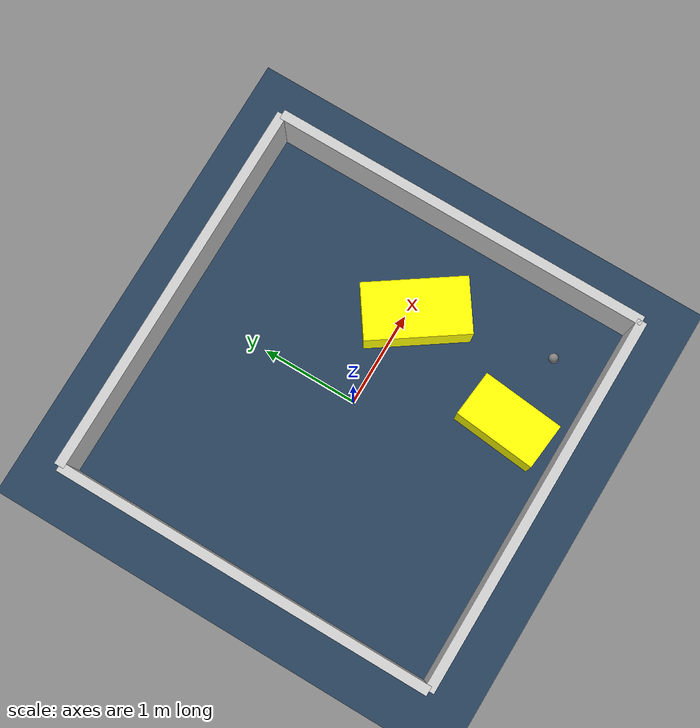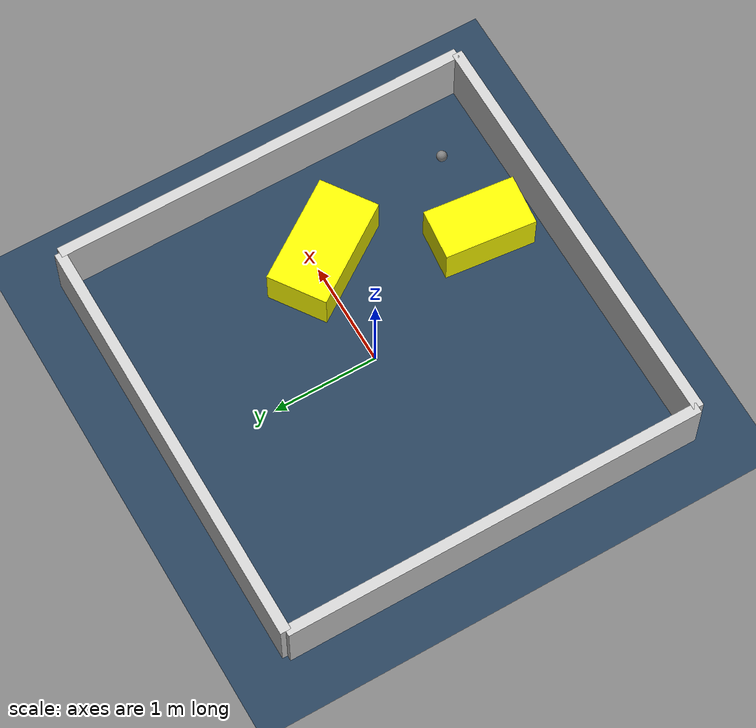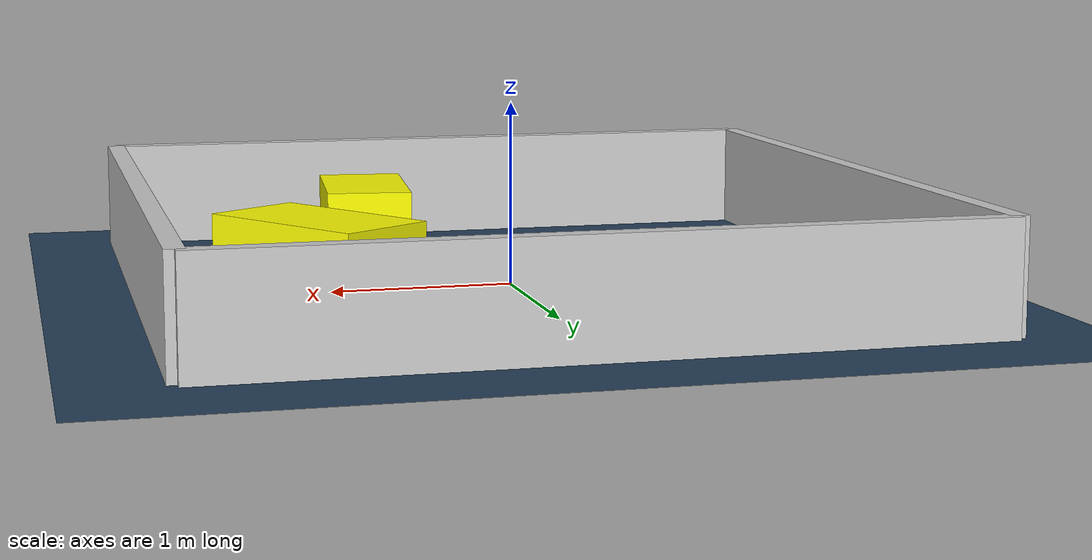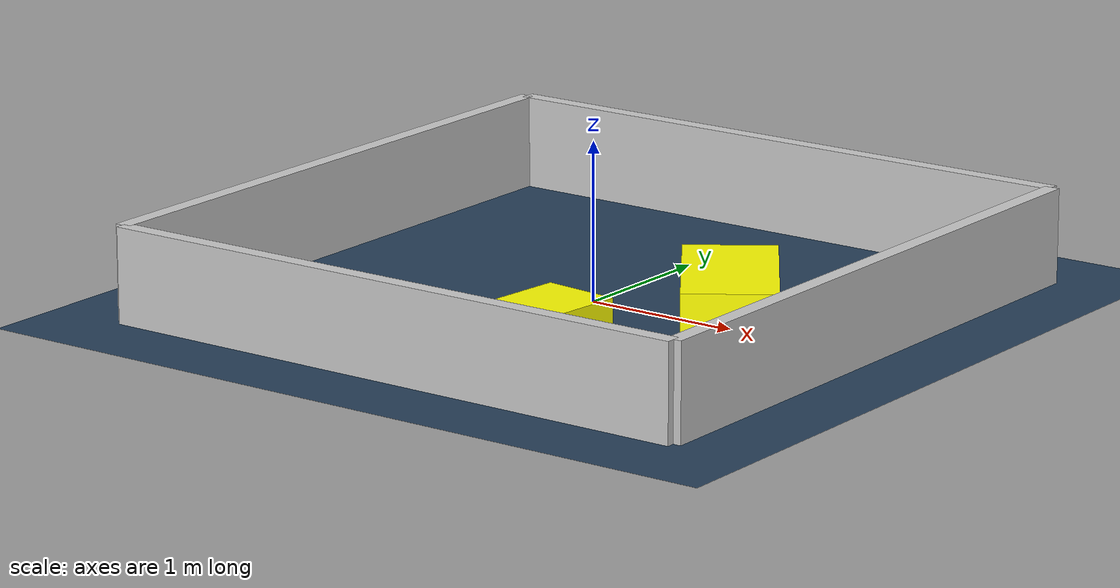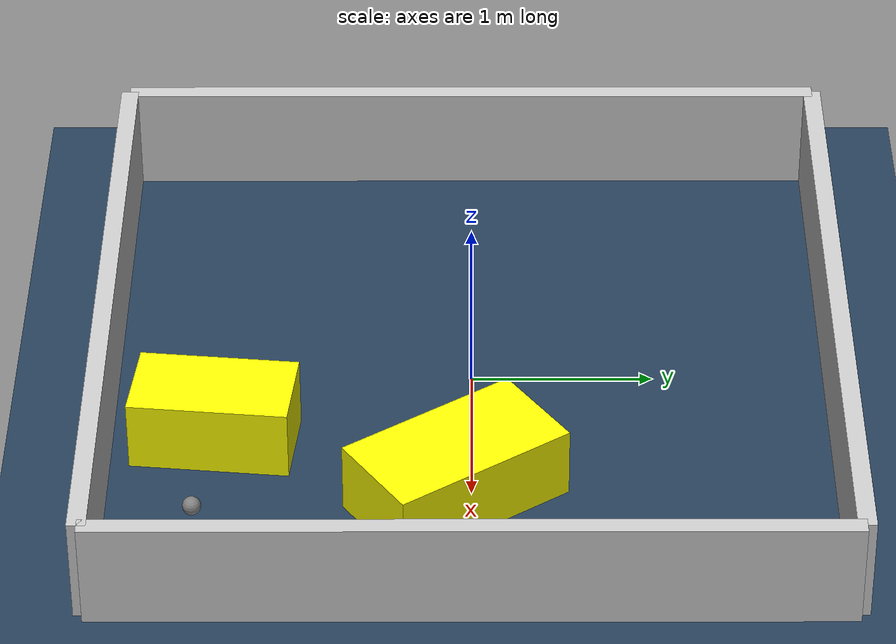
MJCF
<?xml version="1.0" ?>
<mujoco model="generated_environment">
  <option timestep="0.01" integrator="RK4" cone="elliptic"/>
  <default>
    <geom density="1"/>
  </default>
  <asset>
    <texture builtin="gradient" height="3072" rgb1="0.3 0.5 0.7" rgb2="0 0 0" type="skybox" width="512"/>
    <texture builtin="checker" height="300" mark="edge" markrgb="0.8 0.8 0.8" name="groundplane" rgb1="0.2 0.3 0.4" rgb2="0.1 0.2 0.3" type="2d" width="300"/>
    <material name="groundplane" reflectance="0.2" texrepeat="5 5" texture="groundplane" texuniform="true"/>
    <material name="robot" rgba="0.0 1.0 0.0 1"/>
  </asset>
  <worldbody>
    <light dir="0 0 -1" directional="true" pos="0 0 1.5"/>
    <geom condim="4" friction="1.0 0.005 0.001" material="groundplane" name="floor" size="0 0 0.05" type="plane"/>
    <body name="walls">
      <geom name="wall_1" condim="4" pos="-2.0 0.0 0.3" rgba="0.800000011920929 0.800000011920929 0.800000011920929 1.0" size="0.05 2.0 0.3" type="box"/>
      <geom name="wall_2" condim="4" pos="2.0 0.0 0.3" rgba="0.800000011920929 0.800000011920929 0.800000011920929 1.0" size="0.05 2.0 0.3" type="box"/>
      <geom name="wall_3" condim="4" pos="0.0 -2.0 0.3" rgba="0.800000011920929 0.800000011920929 0.800000011920929 1.0" size="2.0 0.05 0.3" type="box"/>
      <geom name="wall_4" condim="4" pos="0.0 2.0 0.3" rgba="0.800000011920929 0.800000011920929 0.800000011920929 1.0" size="2.0 0.05 0.3" type="box"/>
    </body>
    <body name="robot">
      <joint name="joint_x" type="slide" pos="0 0 0" axis="1 0 0"/>
      <joint name="joint_y" type="slide" pos="0 0 0" axis="0 1 0"/>
      <geom name="robot" type="sphere" pos="1.34967532377865 -1.467805058137321 0.2" size="0.05" mass="5." friction="1.0 0.005 0.0001" condim="4"/>
      <site name="sensor_ball"/>
    </body>
    <body name="obstacle_1_movable">
      <geom name="obstacle_1_movable" condim="4" pos="1.0531735378456146 -0.08170112062564017 0.2" euler="0 0 124.49385526059969" friction="1.0 0.005 0.001" rgba="1 1 0 1" size="0.5319954670151883 0.2893685275932484 0.2" type="box" mass="0.1"/>
      <joint type="free"/>
    </body>
    <body name="obstacle_2_movable">
      <geom name="obstacle_2_movable" condim="4" pos="0.5663992728299825 -1.389017465016888 0.2" euler="0 0 84.08527029166791" friction="1.0 0.005 0.001" rgba="1 1 0 1" size="0.4345302452584454 0.24483068372105976 0.2" type="box" mass="0.1"/>
      <joint type="free"/>
    </body>
  </worldbody>
  <actuator>
    <motor name="actuator_x" joint="joint_x" gear="1" ctrlrange="-1 1"/>
    <motor name="actuator_y" joint="joint_y" gear="1" ctrlrange="-1 1"/>
  </actuator>
</mujoco>
